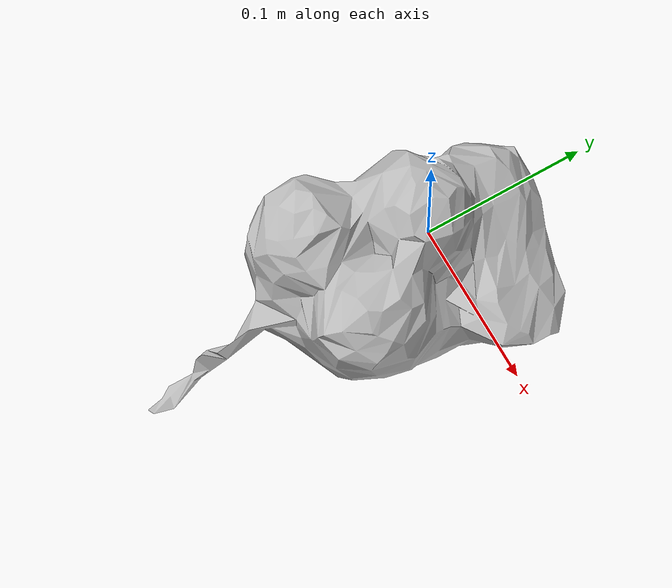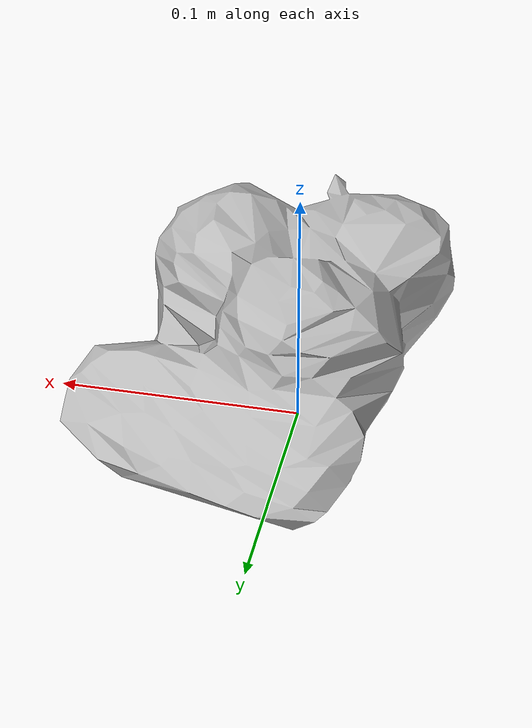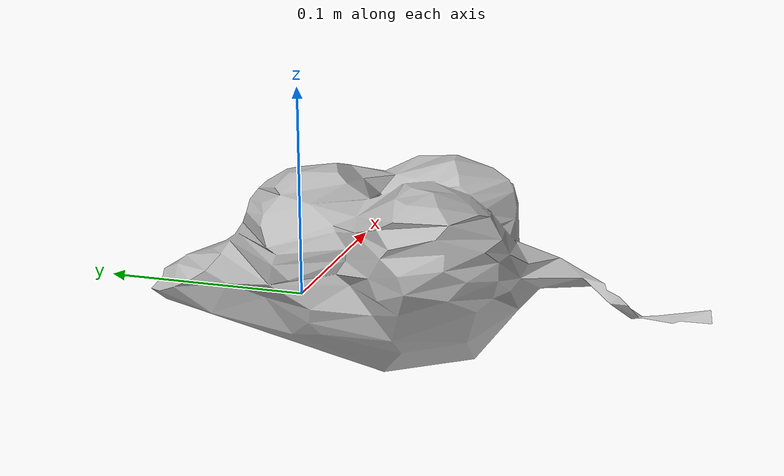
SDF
<?xml version="1.0" ?>
<sdf version="1.4">
  <model name="kyjen_squeakin_eggs_plush_puppies">
    <link name="kyjen_squeakin_eggs_plush_puppies_link">
      <inertial>
        <pose>0 0 0 0 0 0</pose>
        <mass>0.08</mass>
      </inertial>

      <visual name="kyjen_squeakin_eggs_plush_puppies_visual">
        <pose>0 0 0 0 0 0</pose>
        <material>
          <script>
            <uri>model://kyjen_squeakin_eggs_plush_puppies/materials/scripts</uri>
            <uri>model://kyjen_squeakin_eggs_plush_puppies/materials/textures</uri>
            <name>kyjen_squeakin_eggs_plush_puppies</name>
          </script>
        </material>
        <geometry>
          <mesh>
            <uri>model://kyjen_squeakin_eggs_plush_puppies/meshes/kyjen_squeakin_eggs_plush_puppies.dae</uri>
          </mesh>
        </geometry>
      </visual>

      <collision name="kyjen_squeakin_eggs_plush_puppies_collision">
        <pose>0 0 0 0 0 0</pose>
        <geometry>
          <mesh>
            <uri>model://kyjen_squeakin_eggs_plush_puppies/meshes/kyjen_squeakin_eggs_plush_puppies.dae</uri>
          </mesh>
        </geometry>
        <surface>
          <friction>
            <ode>
              <mu>0.8</mu>
              <mu2>0.8</mu2>
            </ode>
          </friction>
        </surface>
      </collision>

    </link>
  </model>
</sdf>
